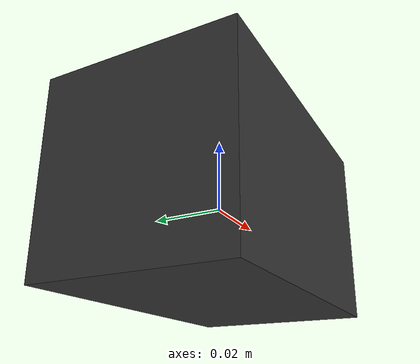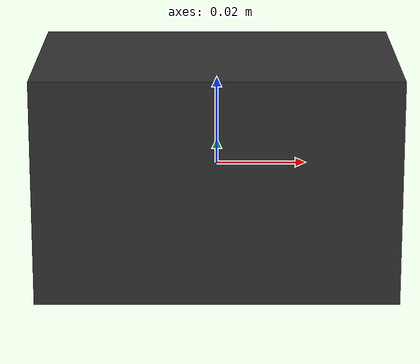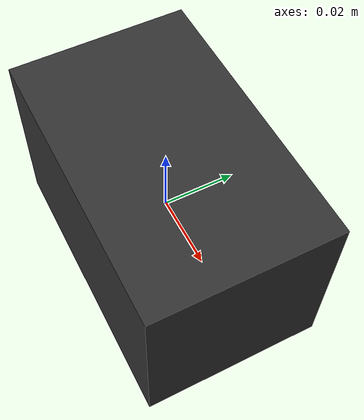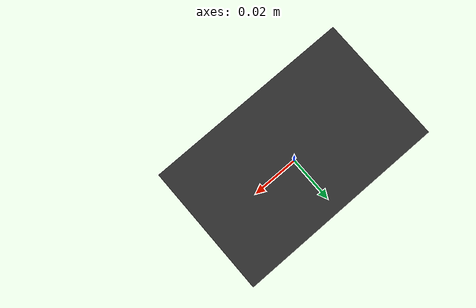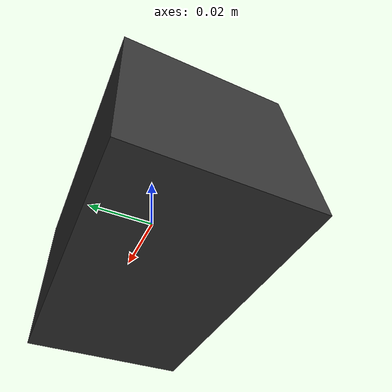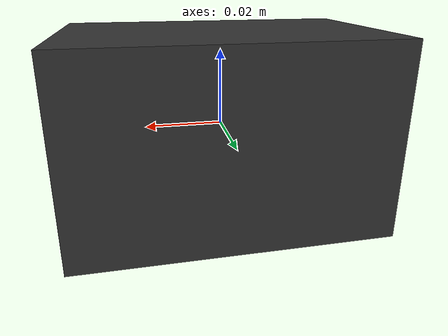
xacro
<?xml version="1.0"?>
<robot xmlns:xacro="http://www.ros.org/wiki/xacro" name="overhead_camera">
  <xacro:arg name="camera_name" default="overhead_camera"/>
  <xacro:arg name="frame_name" default="overhead_camera_link"/>

  <link name="$(arg frame_name)">
    <inertial>
      <mass value="0.2"/>
      <origin xyz="0 0 0" rpy="0 0 0"/>
      <inertia ixx="0.0002" ixy="0.0" ixz="0.0" iyy="0.0002" iyz="0.0" izz="0.0002"/>
    </inertial>
    <visual>
      <origin xyz="0 0 0" rpy="0 0 0"/>
      <geometry>
        <box size="0.08 0.05 0.05"/>
      </geometry>
      <material name="camera_gray">
        <color rgba="0.2 0.2 0.2 1.0"/>
      </material>
    </visual>
    <collision>
      <origin xyz="0 0 0" rpy="0 0 0"/>
      <geometry>
        <box size="0.08 0.05 0.05"/>
      </geometry>
    </collision>
  </link>

  <gazebo reference="$(arg frame_name)">
    <sensor name="$(arg camera_name)_ray_sensor" type="ray">
      <always_on>true</always_on>
      <update_rate>10.0</update_rate>
      <visualize>false</visualize>
      <ray>
        <scan>
          <horizontal>
            <samples>240</samples>
            <resolution>1.0</resolution>
            <min_angle>-0.45</min_angle>
            <max_angle>0.45</max_angle>
          </horizontal>
          <vertical>
            <samples>180</samples>
            <resolution>1.0</resolution>
            <min_angle>-0.35</min_angle>
            <max_angle>0.35</max_angle>
          </vertical>
        </scan>
        <range>
          <min>0.10</min>
          <max>5.0</max>
          <resolution>0.01</resolution>
        </range>
      </ray>
      <plugin name="$(arg camera_name)_pointcloud" filename="libgazebo_ros_ray_sensor.so">
        <ros>
          <namespace>/overhead_camera</namespace>
          <remapping>~/out:=points</remapping>
        </ros>
        <frame_name>$(arg frame_name)</frame_name>
        <output_type>sensor_msgs/PointCloud2</output_type>
      </plugin>
    </sensor>
  </gazebo>
</robot>
